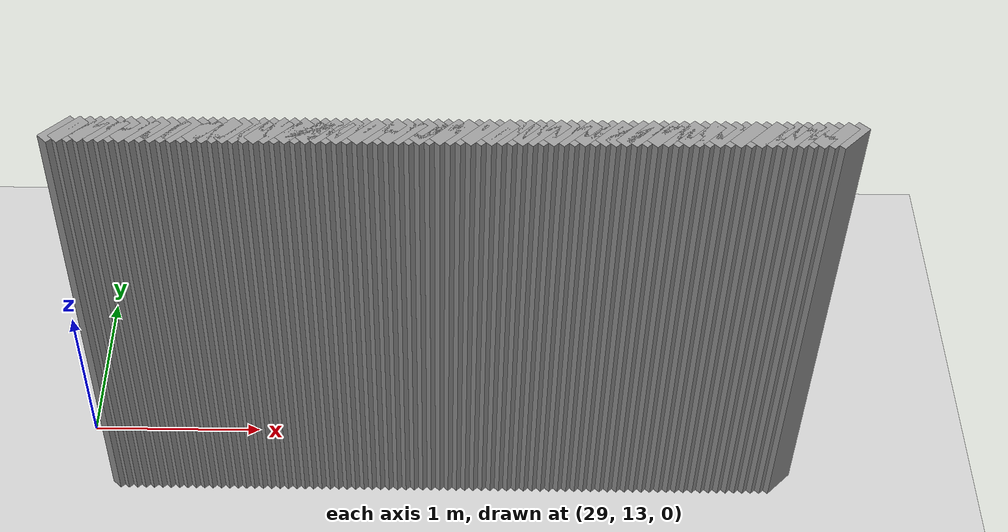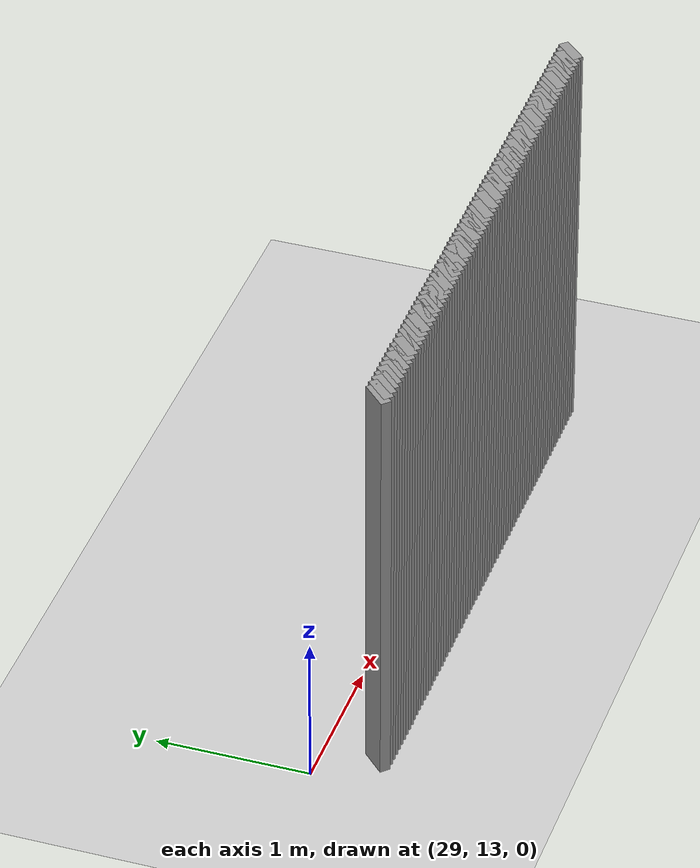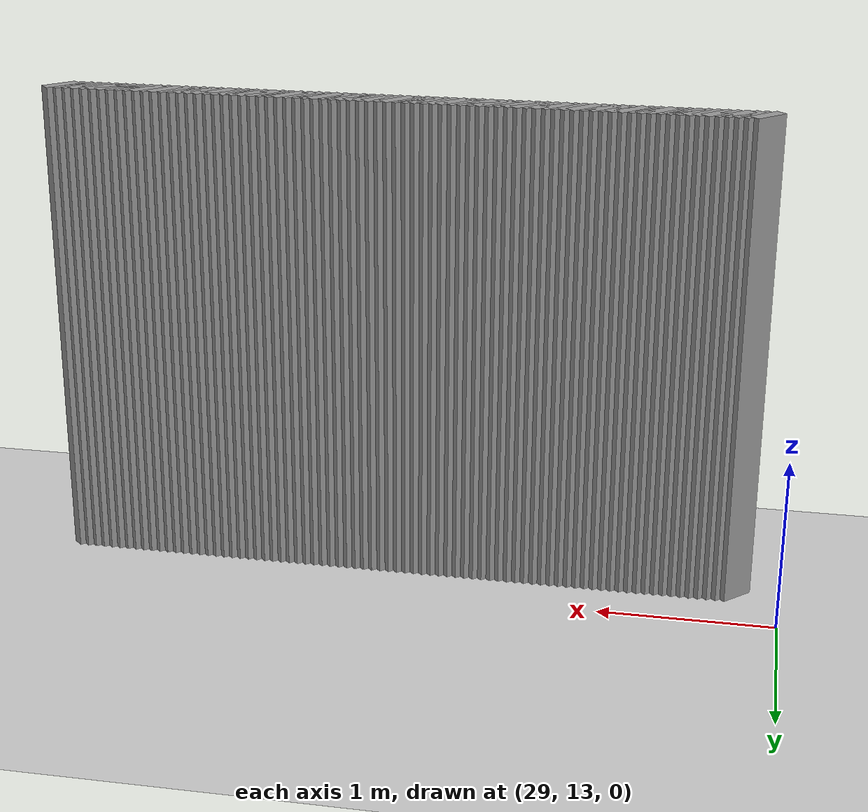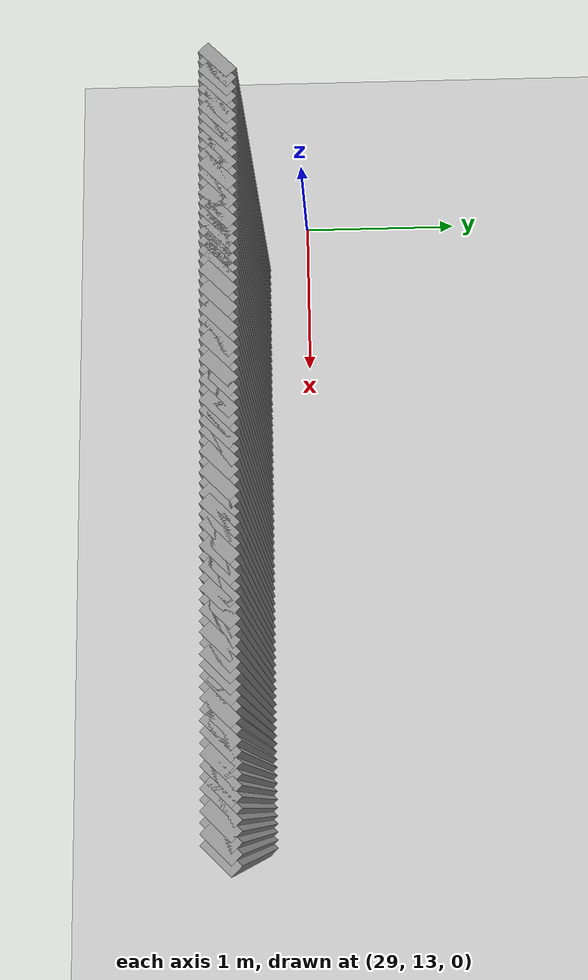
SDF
<sdf version="1.5">
 <world name="default">
  <include><uri>model://ground_plane</uri></include>
  <include><uri>model://sun</uri></include>
  <model name="grey_wall_2364">
   <static>1</static>
   <link name="link">
    <pose>29.25 12.65  1.4 0 0 -0.785398163397</pose>
    <collision name="collision"><geometry><box><size>0.0707106781187 .2  2.8</size></box></geometry></collision>
    <visual name="visual">
     <cast_shadows>0</cast_shadows>
     <geometry><box><size>0.0707106781187 .2  2.8</size></box></geometry>
     <material>
      <script>
       <uri>model://grey_wall/materials/scripts</uri>
       <uri>model://grey_wall/materials/textures</uri>
       <name>vrc/grey_wall</name>
      </script>
     </material>
    </visual>
   </link>
  </model>
  <model name="grey_wall_2365">
   <static>1</static>
   <link name="link">
    <pose>29.3 12.65  1.4 0 0 -0.785398163397</pose>
    <collision name="collision"><geometry><box><size>0.0707106781187 .2  2.8</size></box></geometry></collision>
    <visual name="visual">
     <cast_shadows>0</cast_shadows>
     <geometry><box><size>0.0707106781187 .2  2.8</size></box></geometry>
     <material>
      <script>
       <uri>model://grey_wall/materials/scripts</uri>
       <uri>model://grey_wall/materials/textures</uri>
       <name>vrc/grey_wall</name>
      </script>
     </material>
    </visual>
   </link>
  </model>
  <model name="grey_wall_2366">
   <static>1</static>
   <link name="link">
    <pose>29.35 12.65  1.4 0 0 -0.785398163397</pose>
    <collision name="collision"><geometry><box><size>0.0707106781187 .2  2.8</size></box></geometry></collision>
    <visual name="visual">
     <cast_shadows>0</cast_shadows>
     <geometry><box><size>0.0707106781187 .2  2.8</size></box></geometry>
     <material>
      <script>
       <uri>model://grey_wall/materials/scripts</uri>
       <uri>model://grey_wall/materials/textures</uri>
       <name>vrc/grey_wall</name>
      </script>
     </material>
    </visual>
   </link>
  </model>
  <model name="grey_wall_2367">
   <static>1</static>
   <link name="link">
    <pose>29.4 12.65  1.4 0 0 -0.785398163397</pose>
    <collision name="collision"><geometry><box><size>0.0707106781187 .2  2.8</size></box></geometry></collision>
    <visual name="visual">
     <cast_shadows>0</cast_shadows>
     <geometry><box><size>0.0707106781187 .2  2.8</size></box></geometry>
     <material>
      <script>
       <uri>model://grey_wall/materials/scripts</uri>
       <uri>model://grey_wall/materials/textures</uri>
       <name>vrc/grey_wall</name>
      </script>
     </material>
    </visual>
   </link>
  </model>
  <model name="grey_wall_2368">
   <static>1</static>
   <link name="link">
    <pose>29.45 12.65  1.4 0 0 -0.785398163397</pose>
    <collision name="collision"><geometry><box><size>0.0707106781187 .2  2.8</size></box></geometry></collision>
    <visual name="visual">
     <cast_shadows>0</cast_shadows>
     <geometry><box><size>0.0707106781187 .2  2.8</size></box></geometry>
     <material>
      <script>
       <uri>model://grey_wall/materials/scripts</uri>
       <uri>model://grey_wall/materials/textures</uri>
       <name>vrc/grey_wall</name>
      </script>
     </material>
    </visual>
   </link>
  </model>
  <model name="grey_wall_2369">
   <static>1</static>
   <link name="link">
    <pose>29.5 12.65  1.4 0 0 -0.785398163397</pose>
    <collision name="collision"><geometry><box><size>0.0707106781187 .2  2.8</size></box></geometry></collision>
    <visual name="visual">
     <cast_shadows>0</cast_shadows>
     <geometry><box><size>0.0707106781187 .2  2.8</size></box></geometry>
     <material>
      <script>
       <uri>model://grey_wall/materials/scripts</uri>
       <uri>model://grey_wall/materials/textures</uri>
       <name>vrc/grey_wall</name>
      </script>
     </material>
    </visual>
   </link>
  </model>
  <model name="grey_wall_2370">
   <static>1</static>
   <link name="link">
    <pose>29.55 12.65  1.4 0 0 -0.785398163397</pose>
    <collision name="collision"><geometry><box><size>0.0707106781187 .2  2.8</size></box></geometry></collision>
    <visual name="visual">
     <cast_shadows>0</cast_shadows>
     <geometry><box><size>0.0707106781187 .2  2.8</size></box></geometry>
     <material>
      <script>
       <uri>model://grey_wall/materials/scripts</uri>
       <uri>model://grey_wall/materials/textures</uri>
       <name>vrc/grey_wall</name>
      </script>
     </material>
    </visual>
   </link>
  </model>
  <model name="grey_wall_2371">
   <static>1</static>
   <link name="link">
    <pose>29.6 12.65  1.4 0 0 -0.785398163397</pose>
    <collision name="collision"><geometry><box><size>0.0707106781187 .2  2.8</size></box></geometry></collision>
    <visual name="visual">
     <cast_shadows>0</cast_shadows>
     <geometry><box><size>0.0707106781187 .2  2.8</size></box></geometry>
     <material>
      <script>
       <uri>model://grey_wall/materials/scripts</uri>
       <uri>model://grey_wall/materials/textures</uri>
       <name>vrc/grey_wall</name>
      </script>
     </material>
    </visual>
   </link>
  </model>
  <model name="grey_wall_2372">
   <static>1</static>
   <link name="link">
    <pose>29.65 12.65  1.4 0 0 -0.785398163397</pose>
    <collision name="collision"><geometry><box><size>0.0707106781187 .2  2.8</size></box></geometry></collision>
    <visual name="visual">
     <cast_shadows>0</cast_shadows>
     <geometry><box><size>0.0707106781187 .2  2.8</size></box></geometry>
     <material>
      <script>
       <uri>model://grey_wall/materials/scripts</uri>
       <uri>model://grey_wall/materials/textures</uri>
       <name>vrc/grey_wall</name>
      </script>
     </material>
    </visual>
   </link>
  </model>
  <model name="grey_wall_2373">
   <static>1</static>
   <link name="link">
    <pose>29.7 12.65  1.4 0 0 -0.785398163397</pose>
    <collision name="collision"><geometry><box><size>0.0707106781187 .2  2.8</size></box></geometry></collision>
    <visual name="visual">
     <cast_shadows>0</cast_shadows>
     <geometry><box><size>0.0707106781187 .2  2.8</size></box></geometry>
     <material>
      <script>
       <uri>model://grey_wall/materials/scripts</uri>
       <uri>model://grey_wall/materials/textures</uri>
       <name>vrc/grey_wall</name>
      </script>
     </material>
    </visual>
   </link>
  </model>
  <model name="grey_wall_2374">
   <static>1</static>
   <link name="link">
    <pose>29.75 12.65  1.4 0 0 -0.785398163397</pose>
    <collision name="collision"><geometry><box><size>0.0707106781187 .2  2.8</size></box></geometry></collision>
    <visual name="visual">
     <cast_shadows>0</cast_shadows>
     <geometry><box><size>0.0707106781187 .2  2.8</size></box></geometry>
     <material>
      <script>
       <uri>model://grey_wall/materials/scripts</uri>
       <uri>model://grey_wall/materials/textures</uri>
       <name>vrc/grey_wall</name>
      </script>
     </material>
    </visual>
   </link>
  </model>
  <model name="grey_wall_2375">
   <static>1</static>
   <link name="link">
    <pose>29.8 12.65  1.4 0 0 -0.785398163397</pose>
    <collision name="collision"><geometry><box><size>0.0707106781187 .2  2.8</size></box></geometry></collision>
    <visual name="visual">
     <cast_shadows>0</cast_shadows>
     <geometry><box><size>0.0707106781187 .2  2.8</size></box></geometry>
     <material>
      <script>
       <uri>model://grey_wall/materials/scripts</uri>
       <uri>model://grey_wall/materials/textures</uri>
       <name>vrc/grey_wall</name>
      </script>
     </material>
    </visual>
   </link>
  </model>
  <model name="grey_wall_2376">
   <static>1</static>
   <link name="link">
    <pose>29.85 12.65  1.4 0 0 -0.785398163397</pose>
    <collision name="collision"><geometry><box><size>0.0707106781187 .2  2.8</size></box></geometry></collision>
    <visual name="visual">
     <cast_shadows>0</cast_shadows>
     <geometry><box><size>0.0707106781187 .2  2.8</size></box></geometry>
     <material>
      <script>
       <uri>model://grey_wall/materials/scripts</uri>
       <uri>model://grey_wall/materials/textures</uri>
       <name>vrc/grey_wall</name>
      </script>
     </material>
    </visual>
   </link>
  </model>
  <model name="grey_wall_2377">
   <static>1</static>
   <link name="link">
    <pose>29.9 12.65  1.4 0 0 -0.785398163397</pose>
    <collision name="collision"><geometry><box><size>0.0707106781187 .2  2.8</size></box></geometry></collision>
    <visual name="visual">
     <cast_shadows>0</cast_shadows>
     <geometry><box><size>0.0707106781187 .2  2.8</size></box></geometry>
     <material>
      <script>
       <uri>model://grey_wall/materials/scripts</uri>
       <uri>model://grey_wall/materials/textures</uri>
       <name>vrc/grey_wall</name>
      </script>
     </material>
    </visual>
   </link>
  </model>
  <model name="grey_wall_2378">
   <static>1</static>
   <link name="link">
    <pose>29.95 12.65  1.4 0 0 -0.785398163397</pose>
    <collision name="collision"><geometry><box><size>0.0707106781187 .2  2.8</size></box></geometry></collision>
    <visual name="visual">
     <cast_shadows>0</cast_shadows>
     <geometry><box><size>0.0707106781187 .2  2.8</size></box></geometry>
     <material>
      <script>
       <uri>model://grey_wall/materials/scripts</uri>
       <uri>model://grey_wall/materials/textures</uri>
       <name>vrc/grey_wall</name>
      </script>
     </material>
    </visual>
   </link>
  </model>
  <model name="grey_wall_2379">
   <static>1</static>
   <link name="link">
    <pose>30.0 12.65  1.4 0 0 -0.785398163397</pose>
    <collision name="collision"><geometry><box><size>0.0707106781187 .2  2.8</size></box></geometry></collision>
    <visual name="visual">
     <cast_shadows>0</cast_shadows>
     <geometry><box><size>0.0707106781187 .2  2.8</size></box></geometry>
     <material>
      <script>
       <uri>model://grey_wall/materials/scripts</uri>
       <uri>model://grey_wall/materials/textures</uri>
       <name>vrc/grey_wall</name>
      </script>
     </material>
    </visual>
   </link>
  </model>
  <model name="grey_wall_2380">
   <static>1</static>
   <link name="link">
    <pose>30.05 12.65  1.4 0 0 -0.785398163397</pose>
    <collision name="collision"><geometry><box><size>0.0707106781187 .2  2.8</size></box></geometry></collision>
    <visual name="visual">
     <cast_shadows>0</cast_shadows>
     <geometry><box><size>0.0707106781187 .2  2.8</size></box></geometry>
     <material>
      <script>
       <uri>model://grey_wall/materials/scripts</uri>
       <uri>model://grey_wall/materials/textures</uri>
       <name>vrc/grey_wall</name>
      </script>
     </material>
    </visual>
   </link>
  </model>
  <model name="grey_wall_2381">
   <static>1</static>
   <link name="link">
    <pose>30.1 12.65  1.4 0 0 -0.785398163397</pose>
    <collision name="collision"><geometry><box><size>0.0707106781187 .2  2.8</size></box></geometry></collision>
    <visual name="visual">
     <cast_shadows>0</cast_shadows>
     <geometry><box><size>0.0707106781187 .2  2.8</size></box></geometry>
     <material>
      <script>
       <uri>model://grey_wall/materials/scripts</uri>
       <uri>model://grey_wall/materials/textures</uri>
       <name>vrc/grey_wall</name>
      </script>
     </material>
    </visual>
   </link>
  </model>
  <model name="grey_wall_2382">
   <static>1</static>
   <link name="link">
    <pose>30.15 12.65  1.4 0 0 -0.785398163397</pose>
    <collision name="collision"><geometry><box><size>0.0707106781187 .2  2.8</size></box></geometry></collision>
    <visual name="visual">
     <cast_shadows>0</cast_shadows>
     <geometry><box><size>0.0707106781187 .2  2.8</size></box></geometry>
     <material>
      <script>
       <uri>model://grey_wall/materials/scripts</uri>
       <uri>model://grey_wall/materials/textures</uri>
       <name>vrc/grey_wall</name>
      </script>
     </material>
    </visual>
   </link>
  </model>
  <model name="grey_wall_2383">
   <static>1</static>
   <link name="link">
    <pose>30.2 12.65  1.4 0 0 -0.785398163397</pose>
    <collision name="collision"><geometry><box><size>0.0707106781187 .2  2.8</size></box></geometry></collision>
    <visual name="visual">
     <cast_shadows>0</cast_shadows>
     <geometry><box><size>0.0707106781187 .2  2.8</size></box></geometry>
     <material>
      <script>
       <uri>model://grey_wall/materials/scripts</uri>
       <uri>model://grey_wall/materials/textures</uri>
       <name>vrc/grey_wall</name>
      </script>
     </material>
    </visual>
   </link>
  </model>
  <model name="grey_wall_2384">
   <static>1</static>
   <link name="link">
    <pose>30.25 12.65  1.4 0 0 -0.785398163397</pose>
    <collision name="collision"><geometry><box><size>0.0707106781187 .2  2.8</size></box></geometry></collision>
    <visual name="visual">
     <cast_shadows>0</cast_shadows>
     <geometry><box><size>0.0707106781187 .2  2.8</size></box></geometry>
     <material>
      <script>
       <uri>model://grey_wall/materials/scripts</uri>
       <uri>model://grey_wall/materials/textures</uri>
       <name>vrc/grey_wall</name>
      </script>
     </material>
    </visual>
   </link>
  </model>
  <model name="grey_wall_2385">
   <static>1</static>
   <link name="link">
    <pose>30.3 12.65  1.4 0 0 -0.785398163397</pose>
    <collision name="collision"><geometry><box><size>0.0707106781187 .2  2.8</size></box></geometry></collision>
    <visual name="visual">
     <cast_shadows>0</cast_shadows>
     <geometry><box><size>0.0707106781187 .2  2.8</size></box></geometry>
     <material>
      <script>
       <uri>model://grey_wall/materials/scripts</uri>
       <uri>model://grey_wall/materials/textures</uri>
       <name>vrc/grey_wall</name>
      </script>
     </material>
    </visual>
   </link>
  </model>
  <model name="grey_wall_2386">
   <static>1</static>
   <link name="link">
    <pose>30.35 12.65  1.4 0 0 -0.785398163397</pose>
    <collision name="collision"><geometry><box><size>0.0707106781187 .2  2.8</size></box></geometry></collision>
    <visual name="visual">
     <cast_shadows>0</cast_shadows>
     <geometry><box><size>0.0707106781187 .2  2.8</size></box></geometry>
     <material>
      <script>
       <uri>model://grey_wall/materials/scripts</uri>
       <uri>model://grey_wall/materials/textures</uri>
       <name>vrc/grey_wall</name>
      </script>
     </material>
    </visual>
   </link>
  </model>
  <model name="grey_wall_2387">
   <static>1</static>
   <link name="link">
    <pose>30.4 12.65  1.4 0 0 -0.785398163397</pose>
    <collision name="collision"><geometry><box><size>0.0707106781187 .2  2.8</size></box></geometry></collision>
    <visual name="visual">
     <cast_shadows>0</cast_shadows>
     <geometry><box><size>0.0707106781187 .2  2.8</size></box></geometry>
     <material>
      <script>
       <uri>model://grey_wall/materials/scripts</uri>
       <uri>model://grey_wall/materials/textures</uri>
       <name>vrc/grey_wall</name>
      </script>
     </material>
    </visual>
   </link>
  </model>
  <model name="grey_wall_2388">
   <static>1</static>
   <link name="link">
    <pose>30.45 12.65  1.4 0 0 -0.785398163397</pose>
    <collision name="collision"><geometry><box><size>0.0707106781187 .2  2.8</size></box></geometry></collision>
    <visual name="visual">
     <cast_shadows>0</cast_shadows>
     <geometry><box><size>0.0707106781187 .2  2.8</size></box></geometry>
     <material>
      <script>
       <uri>model://grey_wall/materials/scripts</uri>
       <uri>model://grey_wall/materials/textures</uri>
       <name>vrc/grey_wall</name>
      </script>
     </material>
    </visual>
   </link>
  </model>
  <model name="grey_wall_2389">
   <static>1</static>
   <link name="link">
    <pose>30.5 12.65  1.4 0 0 -0.785398163397</pose>
    <collision name="collision"><geometry><box><size>0.0707106781187 .2  2.8</size></box></geometry></collision>
    <visual name="visual">
     <cast_shadows>0</cast_shadows>
     <geometry><box><size>0.0707106781187 .2  2.8</size></box></geometry>
     <material>
      <script>
       <uri>model://grey_wall/materials/scripts</uri>
       <uri>model://grey_wall/materials/textures</uri>
       <name>vrc/grey_wall</name>
      </script>
     </material>
    </visual>
   </link>
  </model>
  <model name="grey_wall_2390">
   <static>1</static>
   <link name="link">
    <pose>30.55 12.65  1.4 0 0 -0.785398163397</pose>
    <collision name="collision"><geometry><box><size>0.0707106781187 .2  2.8</size></box></geometry></collision>
    <visual name="visual">
     <cast_shadows>0</cast_shadows>
     <geometry><box><size>0.0707106781187 .2  2.8</size></box></geometry>
     <material>
      <script>
       <uri>model://grey_wall/materials/scripts</uri>
       <uri>model://grey_wall/materials/textures</uri>
       <name>vrc/grey_wall</name>
      </script>
     </material>
    </visual>
   </link>
  </model>
  <model name="grey_wall_2391">
   <static>1</static>
   <link name="link">
    <pose>30.6 12.65  1.4 0 0 -0.785398163397</pose>
    <collision name="collision"><geometry><box><size>0.0707106781187 .2  2.8</size></box></geometry></collision>
    <visual name="visual">
     <cast_shadows>0</cast_shadows>
     <geometry><box><size>0.0707106781187 .2  2.8</size></box></geometry>
     <material>
      <script>
       <uri>model://grey_wall/materials/scripts</uri>
       <uri>model://grey_wall/materials/textures</uri>
       <name>vrc/grey_wall</name>
      </script>
     </material>
    </visual>
   </link>
  </model>
  <model name="grey_wall_2392">
   <static>1</static>
   <link name="link">
    <pose>30.65 12.65  1.4 0 0 -0.785398163397</pose>
    <collision name="collision"><geometry><box><size>0.0707106781187 .2  2.8</size></box></geometry></collision>
    <visual name="visual">
     <cast_shadows>0</cast_shadows>
     <geometry><box><size>0.0707106781187 .2  2.8</size></box></geometry>
     <material>
      <script>
       <uri>model://grey_wall/materials/scripts</uri>
       <uri>model://grey_wall/materials/textures</uri>
       <name>vrc/grey_wall</name>
      </script>
     </material>
    </visual>
   </link>
  </model>
  <model name="grey_wall_2393">
   <static>1</static>
   <link name="link">
    <pose>30.7 12.65  1.4 0 0 -0.785398163397</pose>
    <collision name="collision"><geometry><box><size>0.0707106781187 .2  2.8</size></box></geometry></collision>
    <visual name="visual">
     <cast_shadows>0</cast_shadows>
     <geometry><box><size>0.0707106781187 .2  2.8</size></box></geometry>
     <material>
      <script>
       <uri>model://grey_wall/materials/scripts</uri>
       <uri>model://grey_wall/materials/textures</uri>
       <name>vrc/grey_wall</name>
      </script>
     </material>
    </visual>
   </link>
  </model>
  <model name="grey_wall_2394">
   <static>1</static>
   <link name="link">
    <pose>30.75 12.65  1.4 0 0 -0.785398163397</pose>
    <collision name="collision"><geometry><box><size>0.0707106781187 .2  2.8</size></box></geometry></collision>
    <visual name="visual">
     <cast_shadows>0</cast_shadows>
     <geometry><box><size>0.0707106781187 .2  2.8</size></box></geometry>
     <material>
      <script>
       <uri>model://grey_wall/materials/scripts</uri>
       <uri>model://grey_wall/materials/textures</uri>
       <name>vrc/grey_wall</name>
      </script>
     </material>
    </visual>
   </link>
  </model>
  <model name="grey_wall_2395">
   <static>1</static>
   <link name="link">
    <pose>30.8 12.65  1.4 0 0 -0.785398163397</pose>
    <collision name="collision"><geometry><box><size>0.0707106781187 .2  2.8</size></box></geometry></collision>
    <visual name="visual">
     <cast_shadows>0</cast_shadows>
     <geometry><box><size>0.0707106781187 .2  2.8</size></box></geometry>
     <material>
      <script>
       <uri>model://grey_wall/materials/scripts</uri>
       <uri>model://grey_wall/materials/textures</uri>
       <name>vrc/grey_wall</name>
      </script>
     </material>
    </visual>
   </link>
  </model>
  <model name="grey_wall_2396">
   <static>1</static>
   <link name="link">
    <pose>30.85 12.65  1.4 0 0 -0.785398163397</pose>
    <collision name="collision"><geometry><box><size>0.0707106781187 .2  2.8</size></box></geometry></collision>
    <visual name="visual">
     <cast_shadows>0</cast_shadows>
     <geometry><box><size>0.0707106781187 .2  2.8</size></box></geometry>
     <material>
      <script>
       <uri>model://grey_wall/materials/scripts</uri>
       <uri>model://grey_wall/materials/textures</uri>
       <name>vrc/grey_wall</name>
      </script>
     </material>
    </visual>
   </link>
  </model>
  <model name="grey_wall_2397">
   <static>1</static>
   <link name="link">
    <pose>30.9 12.65  1.4 0 0 -0.785398163397</pose>
    <collision name="collision"><geometry><box><size>0.0707106781187 .2  2.8</size></box></geometry></collision>
    <visual name="visual">
     <cast_shadows>0</cast_shadows>
     <geometry><box><size>0.0707106781187 .2  2.8</size></box></geometry>
     <material>
      <script>
       <uri>model://grey_wall/materials/scripts</uri>
       <uri>model://grey_wall/materials/textures</uri>
       <name>vrc/grey_wall</name>
      </script>
     </material>
    </visual>
   </link>
  </model>
  <model name="grey_wall_2398">
   <static>1</static>
   <link name="link">
    <pose>30.95 12.65  1.4 0 0 -0.785398163397</pose>
    <collision name="collision"><geometry><box><size>0.0707106781187 .2  2.8</size></box></geometry></collision>
    <visual name="visual">
     <cast_shadows>0</cast_shadows>
     <geometry><box><size>0.0707106781187 .2  2.8</size></box></geometry>
     <material>
      <script>
       <uri>model://grey_wall/materials/scripts</uri>
       <uri>model://grey_wall/materials/textures</uri>
       <name>vrc/grey_wall</name>
      </script>
     </material>
    </visual>
   </link>
  </model>
  <model name="grey_wall_2399">
   <static>1</static>
   <link name="link">
    <pose>31.0 12.65  1.4 0 0 -0.785398163397</pose>
    <collision name="collision"><geometry><box><size>0.0707106781187 .2  2.8</size></box></geometry></collision>
    <visual name="visual">
     <cast_shadows>0</cast_shadows>
     <geometry><box><size>0.0707106781187 .2  2.8</size></box></geometry>
     <material>
      <script>
       <uri>model://grey_wall/materials/scripts</uri>
       <uri>model://grey_wall/materials/textures</uri>
       <name>vrc/grey_wall</name>
      </script>
     </material>
    </visual>
   </link>
  </model>
  <model name="grey_wall_2400">
   <static>1</static>
   <link name="link">
    <pose>31.05 12.65  1.4 0 0 -0.785398163397</pose>
    <collision name="collision"><geometry><box><size>0.0707106781187 .2  2.8</size></box></geometry></collision>
    <visual name="visual">
     <cast_shadows>0</cast_shadows>
     <geometry><box><size>0.0707106781187 .2  2.8</size></box></geometry>
     <material>
      <script>
       <uri>model://grey_wall/materials/scripts</uri>
       <uri>model://grey_wall/materials/textures</uri>
       <name>vrc/grey_wall</name>
      </script>
     </material>
    </visual>
   </link>
  </model>
  <model name="grey_wall_2401">
   <static>1</static>
   <link name="link">
    <pose>31.1 12.65  1.4 0 0 -0.785398163397</pose>
    <collision name="collision"><geometry><box><size>0.0707106781187 .2  2.8</size></box></geometry></collision>
    <visual name="visual">
     <cast_shadows>0</cast_shadows>
     <geometry><box><size>0.0707106781187 .2  2.8</size></box></geometry>
     <material>
      <script>
       <uri>model://grey_wall/materials/scripts</uri>
       <uri>model://grey_wall/materials/textures</uri>
       <name>vrc/grey_wall</name>
      </script>
     </material>
    </visual>
   </link>
  </model>
  <model name="grey_wall_2402">
   <static>1</static>
   <link name="link">
    <pose>31.15 12.65  1.4 0 0 -0.785398163397</pose>
    <collision name="collision"><geometry><box><size>0.0707106781187 .2  2.8</size></box></geometry></collision>
    <visual name="visual">
     <cast_shadows>0</cast_shadows>
     <geometry><box><size>0.0707106781187 .2  2.8</size></box></geometry>
     <material>
      <script>
       <uri>model://grey_wall/materials/scripts</uri>
       <uri>model://grey_wall/materials/textures</uri>
       <name>vrc/grey_wall</name>
      </script>
     </material>
    </visual>
   </link>
  </model>
  <model name="grey_wall_2403">
   <static>1</static>
   <link name="link">
    <pose>31.2 12.65  1.4 0 0 -0.785398163397</pose>
    <collision name="collision"><geometry><box><size>0.0707106781187 .2  2.8</size></box></geometry></collision>
    <visual name="visual">
     <cast_shadows>0</cast_shadows>
     <geometry><box><size>0.0707106781187 .2  2.8</size></box></geometry>
     <material>
      <script>
       <uri>model://grey_wall/materials/scripts</uri>
       <uri>model://grey_wall/materials/textures</uri>
       <name>vrc/grey_wall</name>
      </script>
     </material>
    </visual>
   </link>
  </model>
  <model name="grey_wall_2404">
   <static>1</static>
   <link name="link">
    <pose>31.25 12.65  1.4 0 0 -0.785398163397</pose>
    <collision name="collision"><geometry><box><size>0.0707106781187 .2  2.8</size></box></geometry></collision>
    <visual name="visual">
     <cast_shadows>0</cast_shadows>
     <geometry><box><size>0.0707106781187 .2  2.8</size></box></geometry>
     <material>
      <script>
       <uri>model://grey_wall/materials/scripts</uri>
       <uri>model://grey_wall/materials/textures</uri>
       <name>vrc/grey_wall</name>
      </script>
     </material>
    </visual>
   </link>
  </model>
  <model name="grey_wall_2405">
   <static>1</static>
   <link name="link">
    <pose>31.3 12.65  1.4 0 0 -0.785398163397</pose>
    <collision name="collision"><geometry><box><size>0.0707106781187 .2  2.8</size></box></geometry></collision>
    <visual name="visual">
     <cast_shadows>0</cast_shadows>
     <geometry><box><size>0.0707106781187 .2  2.8</size></box></geometry>
     <material>
      <script>
       <uri>model://grey_wall/materials/scripts</uri>
       <uri>model://grey_wall/materials/textures</uri>
       <name>vrc/grey_wall</name>
      </script>
     </material>
    </visual>
   </link>
  </model>
  <model name="grey_wall_2406">
   <static>1</static>
   <link name="link">
    <pose>31.35 12.65  1.4 0 0 -0.785398163397</pose>
    <collision name="collision"><geometry><box><size>0.0707106781187 .2  2.8</size></box></geometry></collision>
    <visual name="visual">
     <cast_shadows>0</cast_shadows>
     <geometry><box><size>0.0707106781187 .2  2.8</size></box></geometry>
     <material>
      <script>
       <uri>model://grey_wall/materials/scripts</uri>
       <uri>model://grey_wall/materials/textures</uri>
       <name>vrc/grey_wall</name>
      </script>
     </material>
    </visual>
   </link>
  </model>
  <model name="grey_wall_2407">
   <static>1</static>
   <link name="link">
    <pose>31.4 12.65  1.4 0 0 -0.785398163397</pose>
    <collision name="collision"><geometry><box><size>0.0707106781187 .2  2.8</size></box></geometry></collision>
    <visual name="visual">
     <cast_shadows>0</cast_shadows>
     <geometry><box><size>0.0707106781187 .2  2.8</size></box></geometry>
     <material>
      <script>
       <uri>model://grey_wall/materials/scripts</uri>
       <uri>model://grey_wall/materials/textures</uri>
       <name>vrc/grey_wall</name>
      </script>
     </material>
    </visual>
   </link>
  </model>
  <model name="grey_wall_2408">
   <static>1</static>
   <link name="link">
    <pose>31.45 12.65  1.4 0 0 -0.785398163397</pose>
    <collision name="collision"><geometry><box><size>0.0707106781187 .2  2.8</size></box></geometry></collision>
    <visual name="visual">
     <cast_shadows>0</cast_shadows>
     <geometry><box><size>0.0707106781187 .2  2.8</size></box></geometry>
     <material>
      <script>
       <uri>model://grey_wall/materials/scripts</uri>
       <uri>model://grey_wall/materials/textures</uri>
       <name>vrc/grey_wall</name>
      </script>
     </material>
    </visual>
   </link>
  </model>
  <model name="grey_wall_2409">
   <static>1</static>
   <link name="link">
    <pose>31.5 12.65  1.4 0 0 -0.785398163397</pose>
    <collision name="collision"><geometry><box><size>0.0707106781187 .2  2.8</size></box></geometry></collision>
    <visual name="visual">
     <cast_shadows>0</cast_shadows>
     <geometry><box><size>0.0707106781187 .2  2.8</size></box></geometry>
     <material>
      <script>
       <uri>model://grey_wall/materials/scripts</uri>
       <uri>model://grey_wall/materials/textures</uri>
       <name>vrc/grey_wall</name>
      </script>
     </material>
    </visual>
   </link>
  </model>
  <model name="grey_wall_2410">
   <static>1</static>
   <link name="link">
    <pose>31.55 12.65  1.4 0 0 -0.785398163397</pose>
    <collision name="collision"><geometry><box><size>0.0707106781187 .2  2.8</size></box></geometry></collision>
    <visual name="visual">
     <cast_shadows>0</cast_shadows>
     <geometry><box><size>0.0707106781187 .2  2.8</size></box></geometry>
     <material>
      <script>
       <uri>model://grey_wall/materials/scripts</uri>
       <uri>model://grey_wall/materials/textures</uri>
       <name>vrc/grey_wall</name>
      </script>
     </material>
    </visual>
   </link>
  </model>
  <model name="grey_wall_2411">
   <static>1</static>
   <link name="link">
    <pose>31.6 12.65  1.4 0 0 -0.785398163397</pose>
    <collision name="collision"><geometry><box><size>0.0707106781187 .2  2.8</size></box></geometry></collision>
    <visual name="visual">
     <cast_shadows>0</cast_shadows>
     <geometry><box><size>0.0707106781187 .2  2.8</size></box></geometry>
     <material>
      <script>
       <uri>model://grey_wall/materials/scripts</uri>
       <uri>model://grey_wall/materials/textures</uri>
       <name>vrc/grey_wall</name>
      </script>
     </material>
    </visual>
   </link>
  </model>
  <model name="grey_wall_2412">
   <static>1</static>
   <link name="link">
    <pose>31.65 12.65  1.4 0 0 -0.785398163397</pose>
    <collision name="collision"><geometry><box><size>0.0707106781187 .2  2.8</size></box></geometry></collision>
    <visual name="visual">
     <cast_shadows>0</cast_shadows>
     <geometry><box><size>0.0707106781187 .2  2.8</size></box></geometry>
     <material>
      <script>
       <uri>model://grey_wall/materials/scripts</uri>
       <uri>model://grey_wall/materials/textures</uri>
       <name>vrc/grey_wall</name>
      </script>
     </material>
    </visual>
   </link>
  </model>
  <model name="grey_wall_2413">
   <static>1</static>
   <link name="link">
    <pose>31.7 12.65  1.4 0 0 -0.785398163397</pose>
    <collision name="collision"><geometry><box><size>0.0707106781187 .2  2.8</size></box></geometry></collision>
    <visual name="visual">
     <cast_shadows>0</cast_shadows>
     <geometry><box><size>0.0707106781187 .2  2.8</size></box></geometry>
     <material>
      <script>
       <uri>model://grey_wall/materials/scripts</uri>
       <uri>model://grey_wall/materials/textures</uri>
       <name>vrc/grey_wall</name>
      </script>
     </material>
    </visual>
   </link>
  </model>
  <model name="grey_wall_2414">
   <static>1</static>
   <link name="link">
    <pose>31.75 12.65  1.4 0 0 -0.785398163397</pose>
    <collision name="collision"><geometry><box><size>0.0707106781187 .2  2.8</size></box></geometry></collision>
    <visual name="visual">
     <cast_shadows>0</cast_shadows>
     <geometry><box><size>0.0707106781187 .2  2.8</size></box></geometry>
     <material>
      <script>
       <uri>model://grey_wall/materials/scripts</uri>
       <uri>model://grey_wall/materials/textures</uri>
       <name>vrc/grey_wall</name>
      </script>
     </material>
    </visual>
   </link>
  </model>
  <model name="grey_wall_2415">
   <static>1</static>
   <link name="link">
    <pose>31.8 12.65  1.4 0 0 -0.785398163397</pose>
    <collision name="collision"><geometry><box><size>0.0707106781187 .2  2.8</size></box></geometry></collision>
    <visual name="visual">
     <cast_shadows>0</cast_shadows>
     <geometry><box><size>0.0707106781187 .2  2.8</size></box></geometry>
     <material>
      <script>
       <uri>model://grey_wall/materials/scripts</uri>
       <uri>model://grey_wall/materials/textures</uri>
       <name>vrc/grey_wall</name>
      </script>
     </material>
    </visual>
   </link>
  </model>
  <model name="grey_wall_2416">
   <static>1</static>
   <link name="link">
    <pose>31.85 12.65  1.4 0 0 -0.785398163397</pose>
    <collision name="collision"><geometry><box><size>0.0707106781187 .2  2.8</size></box></geometry></collision>
    <visual name="visual">
     <cast_shadows>0</cast_shadows>
     <geometry><box><size>0.0707106781187 .2  2.8</size></box></geometry>
     <material>
      <script>
       <uri>model://grey_wall/materials/scripts</uri>
       <uri>model://grey_wall/materials/textures</uri>
       <name>vrc/grey_wall</name>
      </script>
     </material>
    </visual>
   </link>
  </model>
  <model name="grey_wall_2417">
   <static>1</static>
   <link name="link">
    <pose>31.9 12.65  1.4 0 0 -0.785398163397</pose>
    <collision name="collision"><geometry><box><size>0.0707106781187 .2  2.8</size></box></geometry></collision>
    <visual name="visual">
     <cast_shadows>0</cast_shadows>
     <geometry><box><size>0.0707106781187 .2  2.8</size></box></geometry>
     <material>
      <script>
       <uri>model://grey_wall/materials/scripts</uri>
       <uri>model://grey_wall/materials/textures</uri>
       <name>vrc/grey_wall</name>
      </script>
     </material>
    </visual>
   </link>
  </model>
  <model name="grey_wall_2418">
   <static>1</static>
   <link name="link">
    <pose>31.95 12.65  1.4 0 0 -0.785398163397</pose>
    <collision name="collision"><geometry><box><size>0.0707106781187 .2  2.8</size></box></geometry></collision>
    <visual name="visual">
     <cast_shadows>0</cast_shadows>
     <geometry><box><size>0.0707106781187 .2  2.8</size></box></geometry>
     <material>
      <script>
       <uri>model://grey_wall/materials/scripts</uri>
       <uri>model://grey_wall/materials/textures</uri>
       <name>vrc/grey_wall</name>
      </script>
     </material>
    </visual>
   </link>
  </model>
  <model name="grey_wall_2419">
   <static>1</static>
   <link name="link">
    <pose>32.0 12.65  1.4 0 0 -0.785398163397</pose>
    <collision name="collision"><geometry><box><size>0.0707106781187 .2  2.8</size></box></geometry></collision>
    <visual name="visual">
     <cast_shadows>0</cast_shadows>
     <geometry><box><size>0.0707106781187 .2  2.8</size></box></geometry>
     <material>
      <script>
       <uri>model://grey_wall/materials/scripts</uri>
       <uri>model://grey_wall/materials/textures</uri>
       <name>vrc/grey_wall</name>
      </script>
     </material>
    </visual>
   </link>
  </model>
  <model name="grey_wall_2420">
   <static>1</static>
   <link name="link">
    <pose>32.05 12.65  1.4 0 0 -0.785398163397</pose>
    <collision name="collision"><geometry><box><size>0.0707106781187 .2  2.8</size></box></geometry></collision>
    <visual name="visual">
     <cast_shadows>0</cast_shadows>
     <geometry><box><size>0.0707106781187 .2  2.8</size></box></geometry>
     <material>
      <script>
       <uri>model://grey_wall/materials/scripts</uri>
       <uri>model://grey_wall/materials/textures</uri>
       <name>vrc/grey_wall</name>
      </script>
     </material>
    </visual>
   </link>
  </model>
  <model name="grey_wall_2421">
   <static>1</static>
   <link name="link">
    <pose>32.1 12.65  1.4 0 0 -0.785398163397</pose>
    <collision name="collision"><geometry><box><size>0.0707106781187 .2  2.8</size></box></geometry></collision>
    <visual name="visual">
     <cast_shadows>0</cast_shadows>
     <geometry><box><size>0.0707106781187 .2  2.8</size></box></geometry>
     <material>
      <script>
       <uri>model://grey_wall/materials/scripts</uri>
       <uri>model://grey_wall/materials/textures</uri>
       <name>vrc/grey_wall</name>
      </script>
     </material>
    </visual>
   </link>
  </model>
  <model name="grey_wall_2422">
   <static>1</static>
   <link name="link">
    <pose>32.15 12.65  1.4 0 0 -0.785398163397</pose>
    <collision name="collision"><geometry><box><size>0.0707106781187 .2  2.8</size></box></geometry></collision>
    <visual name="visual">
     <cast_shadows>0</cast_shadows>
     <geometry><box><size>0.0707106781187 .2  2.8</size></box></geometry>
     <material>
      <script>
       <uri>model://grey_wall/materials/scripts</uri>
       <uri>model://grey_wall/materials/textures</uri>
       <name>vrc/grey_wall</name>
      </script>
     </material>
    </visual>
   </link>
  </model>
  <model name="grey_wall_2423">
   <static>1</static>
   <link name="link">
    <pose>32.2 12.65  1.4 0 0 -0.785398163397</pose>
    <collision name="collision"><geometry><box><size>0.0707106781187 .2  2.8</size></box></geometry></collision>
    <visual name="visual">
     <cast_shadows>0</cast_shadows>
     <geometry><box><size>0.0707106781187 .2  2.8</size></box></geometry>
     <material>
      <script>
       <uri>model://grey_wall/materials/scripts</uri>
       <uri>model://grey_wall/materials/textures</uri>
       <name>vrc/grey_wall</name>
      </script>
     </material>
    </visual>
   </link>
  </model>
  <model name="grey_wall_2424">
   <static>1</static>
   <link name="link">
    <pose>32.25 12.65  1.4 0 0 -0.785398163397</pose>
    <collision name="collision"><geometry><box><size>0.0707106781187 .2  2.8</size></box></geometry></collision>
    <visual name="visual">
     <cast_shadows>0</cast_shadows>
     <geometry><box><size>0.0707106781187 .2  2.8</size></box></geometry>
     <material>
      <script>
       <uri>model://grey_wall/materials/scripts</uri>
       <uri>model://grey_wall/materials/textures</uri>
       <name>vrc/grey_wall</name>
      </script>
     </material>
    </visual>
   </link>
  </model>
  <model name="grey_wall_2425">
   <static>1</static>
   <link name="link">
    <pose>32.3 12.65  1.4 0 0 -0.785398163397</pose>
    <collision name="collision"><geometry><box><size>0.0707106781187 .2  2.8</size></box></geometry></collision>
    <visual name="visual">
     <cast_shadows>0</cast_shadows>
     <geometry><box><size>0.0707106781187 .2  2.8</size></box></geometry>
     <material>
      <script>
       <uri>model://grey_wall/materials/scripts</uri>
       <uri>model://grey_wall/materials/textures</uri>
       <name>vrc/grey_wall</name>
      </script>
     </material>
    </visual>
   </link>
  </model>
  <model name="grey_wall_2426">
   <static>1</static>
   <link name="link">
    <pose>32.35 12.65  1.4 0 0 -0.785398163397</pose>
    <collision name="collision"><geometry><box><size>0.0707106781187 .2  2.8</size></box></geometry></collision>
    <visual name="visual">
     <cast_shadows>0</cast_shadows>
     <geometry><box><size>0.0707106781187 .2  2.8</size></box></geometry>
     <material>
      <script>
       <uri>model://grey_wall/materials/scripts</uri>
       <uri>model://grey_wall/materials/textures</uri>
       <name>vrc/grey_wall</name>
      </script>
     </material>
    </visual>
   </link>
  </model>
  <model name="grey_wall_2427">
   <static>1</static>
   <link name="link">
    <pose>32.4 12.65  1.4 0 0 -0.785398163397</pose>
    <collision name="collision"><geometry><box><size>0.0707106781187 .2  2.8</size></box></geometry></collision>
    <visual name="visual">
     <cast_shadows>0</cast_shadows>
     <geometry><box><size>0.0707106781187 .2  2.8</size></box></geometry>
     <material>
      <script>
       <uri>model://grey_wall/materials/scripts</uri>
       <uri>model://grey_wall/materials/textures</uri>
       <name>vrc/grey_wall</name>
      </script>
     </material>
    </visual>
   </link>
  </model>
  <model name="grey_wall_2428">
   <static>1</static>
   <link name="link">
    <pose>32.45 12.65  1.4 0 0 -0.785398163397</pose>
    <collision name="collision"><geometry><box><size>0.0707106781187 .2  2.8</size></box></geometry></collision>
    <visual name="visual">
     <cast_shadows>0</cast_shadows>
     <geometry><box><size>0.0707106781187 .2  2.8</size></box></geometry>
     <material>
      <script>
       <uri>model://grey_wall/materials/scripts</uri>
       <uri>model://grey_wall/materials/textures</uri>
       <name>vrc/grey_wall</name>
      </script>
     </material>
    </visual>
   </link>
  </model>
  <model name="grey_wall_2429">
   <static>1</static>
   <link name="link">
    <pose>32.5 12.65  1.4 0 0 -0.785398163397</pose>
    <collision name="collision"><geometry><box><size>0.0707106781187 .2  2.8</size></box></geometry></collision>
    <visual name="visual">
     <cast_shadows>0</cast_shadows>
     <geometry><box><size>0.0707106781187 .2  2.8</size></box></geometry>
     <material>
      <script>
       <uri>model://grey_wall/materials/scripts</uri>
       <uri>model://grey_wall/materials/textures</uri>
       <name>vrc/grey_wall</name>
      </script>
     </material>
    </visual>
   </link>
  </model>
  <model name="grey_wall_2430">
   <static>1</static>
   <link name="link">
    <pose>32.55 12.65  1.4 0 0 -0.785398163397</pose>
    <collision name="collision"><geometry><box><size>0.0707106781187 .2  2.8</size></box></geometry></collision>
    <visual name="visual">
     <cast_shadows>0</cast_shadows>
     <geometry><box><size>0.0707106781187 .2  2.8</size></box></geometry>
     <material>
      <script>
       <uri>model://grey_wall/materials/scripts</uri>
       <uri>model://grey_wall/materials/textures</uri>
       <name>vrc/grey_wall</name>
      </script>
     </material>
    </visual>
   </link>
  </model>
  <model name="grey_wall_2431">
   <static>1</static>
   <link name="link">
    <pose>32.6 12.65  1.4 0 0 -0.785398163397</pose>
    <collision name="collision"><geometry><box><size>0.0707106781187 .2  2.8</size></box></geometry></collision>
    <visual name="visual">
     <cast_shadows>0</cast_shadows>
     <geometry><box><size>0.0707106781187 .2  2.8</size></box></geometry>
     <material>
      <script>
       <uri>model://grey_wall/materials/scripts</uri>
       <uri>model://grey_wall/materials/textures</uri>
       <name>vrc/grey_wall</name>
      </script>
     </material>
    </visual>
   </link>
  </model>
  <model name="grey_wall_2432">
   <static>1</static>
   <link name="link">
    <pose>32.65 12.65  1.4 0 0 -0.785398163397</pose>
    <collision name="collision"><geometry><box><size>0.0707106781187 .2  2.8</size></box></geometry></collision>
    <visual name="visual">
     <cast_shadows>0</cast_shadows>
     <geometry><box><size>0.0707106781187 .2  2.8</size></box></geometry>
     <material>
      <script>
       <uri>model://grey_wall/materials/scripts</uri>
       <uri>model://grey_wall/materials/textures</uri>
       <name>vrc/grey_wall</name>
      </script>
     </material>
    </visual>
   </link>
  </model>
  <model name="grey_wall_2433">
   <static>1</static>
   <link name="link">
    <pose>32.7 12.65  1.4 0 0 -0.785398163397</pose>
    <collision name="collision"><geometry><box><size>0.0707106781187 .2  2.8</size></box></geometry></collision>
    <visual name="visual">
     <cast_shadows>0</cast_shadows>
     <geometry><box><size>0.0707106781187 .2  2.8</size></box></geometry>
     <material>
      <script>
       <uri>model://grey_wall/materials/scripts</uri>
       <uri>model://grey_wall/materials/textures</uri>
       <name>vrc/grey_wall</name>
      </script>
     </material>
    </visual>
   </link>
  </model>
  <model name="grey_wall_2434">
   <static>1</static>
   <link name="link">
    <pose>32.75 12.65  1.4 0 0 -0.785398163397</pose>
    <collision name="collision"><geometry><box><size>0.0707106781187 .2  2.8</size></box></geometry></collision>
    <visual name="visual">
     <cast_shadows>0</cast_shadows>
     <geometry><box><size>0.0707106781187 .2  2.8</size></box></geometry>
     <material>
      <script>
       <uri>model://grey_wall/materials/scripts</uri>
       <uri>model://grey_wall/materials/textures</uri>
       <name>vrc/grey_wall</name>
      </script>
     </material>
    </visual>
   </link>
  </model>
  <model name="grey_wall_2435">
   <static>1</static>
   <link name="link">
    <pose>32.8 12.65  1.4 0 0 -0.785398163397</pose>
    <collision name="collision"><geometry><box><size>0.0707106781187 .2  2.8</size></box></geometry></collision>
    <visual name="visual">
     <cast_shadows>0</cast_shadows>
     <geometry><box><size>0.0707106781187 .2  2.8</size></box></geometry>
     <material>
      <script>
       <uri>model://grey_wall/materials/scripts</uri>
       <uri>model://grey_wall/materials/textures</uri>
       <name>vrc/grey_wall</name>
      </script>
     </material>
    </visual>
   </link>
  </model>
  <model name="grey_wall_2436">
   <static>1</static>
   <link name="link">
    <pose>32.85 12.65  1.4 0 0 -0.785398163397</pose>
    <collision name="collision"><geometry><box><size>0.0707106781187 .2  2.8</size></box></geometry></collision>
    <visual name="visual">
     <cast_shadows>0</cast_shadows>
     <geometry><box><size>0.0707106781187 .2  2.8</size></box></geometry>
     <material>
      <script>
       <uri>model://grey_wall/materials/scripts</uri>
       <uri>model://grey_wall/materials/textures</uri>
       <name>vrc/grey_wall</name>
      </script>
     </material>
    </visual>
   </link>
  </model>
  <model name="grey_wall_2437">
   <static>1</static>
   <link name="link">
    <pose>32.9 12.65  1.4 0 0 -0.785398163397</pose>
    <collision name="collision"><geometry><box><size>0.0707106781187 .2  2.8</size></box></geometry></collision>
    <visual name="visual">
     <cast_shadows>0</cast_shadows>
     <geometry><box><size>0.0707106781187 .2  2.8</size></box></geometry>
     <material>
      <script>
       <uri>model://grey_wall/materials/scripts</uri>
       <uri>model://grey_wall/materials/textures</uri>
       <name>vrc/grey_wall</name>
      </script>
     </material>
    </visual>
   </link>
  </model>
  <model name="grey_wall_2438">
   <static>1</static>
   <link name="link">
    <pose>32.95 12.65  1.4 0 0 -0.785398163397</pose>
    <collision name="collision"><geometry><box><size>0.0707106781187 .2  2.8</size></box></geometry></collision>
    <visual name="visual">
     <cast_shadows>0</cast_shadows>
     <geometry><box><size>0.0707106781187 .2  2.8</size></box></geometry>
     <material>
      <script>
       <uri>model://grey_wall/materials/scripts</uri>
       <uri>model://grey_wall/materials/textures</uri>
       <name>vrc/grey_wall</name>
      </script>
     </material>
    </visual>
   </link>
  </model>
  <model name="grey_wall_2439">
   <static>1</static>
   <link name="link">
    <pose>33.0 12.65  1.4 0 0 -0.785398163397</pose>
    <collision name="collision"><geometry><box><size>0.0707106781187 .2  2.8</size></box></geometry></collision>
    <visual name="visual">
     <cast_shadows>0</cast_shadows>
     <geometry><box><size>0.0707106781187 .2  2.8</size></box></geometry>
     <material>
      <script>
       <uri>model://grey_wall/materials/scripts</uri>
       <uri>model://grey_wall/materials/textures</uri>
       <name>vrc/grey_wall</name>
      </script>
     </material>
    </visual>
   </link>
  </model>
  <model name="grey_wall_2440">
   <static>1</static>
   <link name="link">
    <pose>33.05 12.65  1.4 0 0 -0.785398163397</pose>
    <collision name="collision"><geometry><box><size>0.0707106781187 .2  2.8</size></box></geometry></collision>
    <visual name="visual">
     <cast_shadows>0</cast_shadows>
     <geometry><box><size>0.0707106781187 .2  2.8</size></box></geometry>
     <material>
      <script>
       <uri>model://grey_wall/materials/scripts</uri>
       <uri>model://grey_wall/materials/textures</uri>
       <name>vrc/grey_wall</name>
      </script>
     </material>
    </visual>
   </link>
  </model>
  <model name="grey_wall_2441">
   <static>1</static>
   <link name="link">
    <pose>33.1 12.65  1.4 0 0 -0.785398163397</pose>
    <collision name="collision"><geometry><box><size>0.0707106781187 .2  2.8</size></box></geometry></collision>
    <visual name="visual">
     <cast_shadows>0</cast_shadows>
     <geometry><box><size>0.0707106781187 .2  2.8</size></box></geometry>
     <material>
      <script>
       <uri>model://grey_wall/materials/scripts</uri>
       <uri>model://grey_wall/materials/textures</uri>
       <name>vrc/grey_wall</name>
      </script>
     </material>
    </visual>
   </link>
  </model>
 </world>
</sdf>
